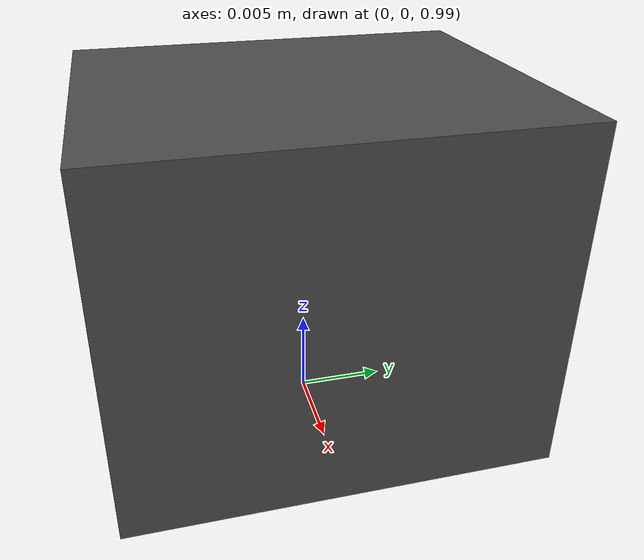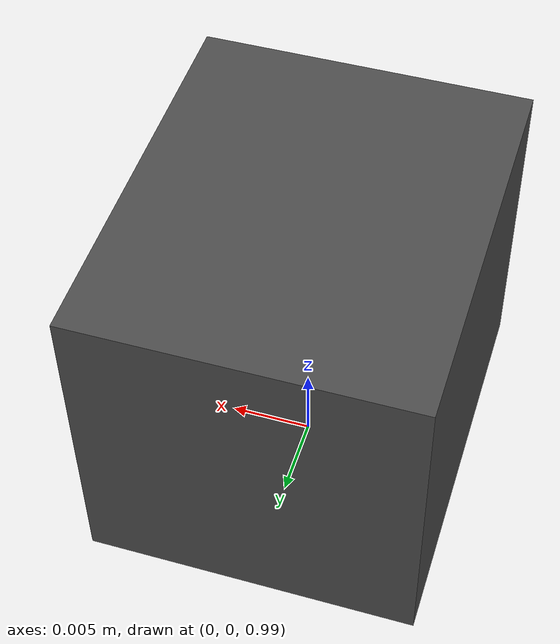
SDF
<?xml version="1.0" ?>
<sdf version="1.5">
  <model name="pointgrey_ros">
    <static>true</static>
    <pose>0 0 1.0 0 0 0</pose>
    <link name='link'>
      <inertial>
        <mass>0.001</mass>
        <inertia>
          <ixx>4.15e-06</ixx>
          <ixy>0</ixy>
          <ixz>0</ixz>
          <iyy>2.407e-06</iyy>
          <iyz>0</iyz>
          <izz>2.407e-06</izz>
        </inertia>
      </inertial>
      <self_collide>0</self_collide>
      <kinematic>0</kinematic>
      <!--sensor name='camera' type='wideanglecamera'-->
      <sensor name='camera' type='camera'>
        <update_rate>20</update_rate>
        <camera name='__default__'>
		  <horizontal_fov>1.2</horizontal_fov>
          <image>
            <width>1280</width>
            <height>720</height>
          </image>
          <clip>
            <near>0.01</near>
            <far>50</far>
          </clip>
          <lens>
			<env_texture_size>512</env_texture_size>
		  </lens>
        </camera>
        <plugin name='camera_controller' filename='libgazebo_ros_camera.so'>
		  <robotNamespace>cam</robotNamespace>
          <imageTopicName>image_raw</imageTopicName>
          <cameraInfoTopicName>camera_info</cameraInfoTopicName>
          <frameName>camera::link</frameName>
        </plugin>
      </sensor>
      <visual name='visual'>
        <geometry>
          <box>
            <size>0.02 0.024 0.02</size>
          </box>
        </geometry>
        <material>
          <script>
            <name>Gazebo/DarkGrey</name>
            <uri>file://media/materials/scripts/gazebo.material</uri>
          </script>
        </material>
        <pose>0 0 0.0 0 0.0 0</pose>
        <cast_shadows>1</cast_shadows>
        <transparency>0</transparency>
      </visual>
    </link>
  </model>
</sdf>
